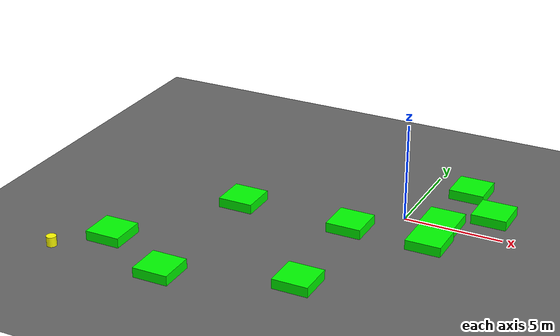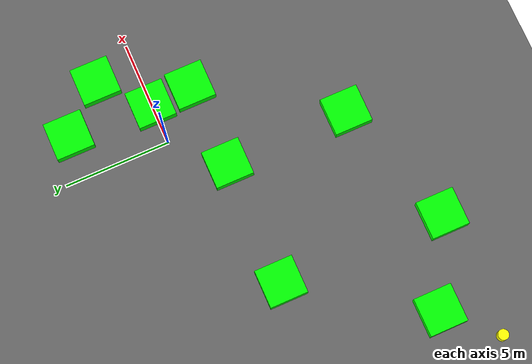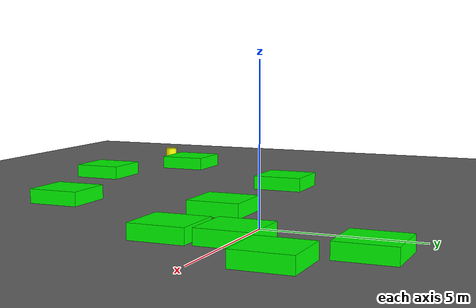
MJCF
<mujoco model="lvl4_standard_obs9_d3long_seed1152">
    <compiler angle="degree" coordinate="local" inertiafromgeom="true"/>
    <option integrator="RK4" timestep="0.01"/>

    <asset>
        <texture builtin="gradient" height="100" rgb1="0.6 0.8 1" rgb2="0 0 0" type="skybox" width="100"/>
        <texture name="floor_texture" type="2d" builtin="checker" width="100" height="100" rgb1="0 0 0" rgb2="0.8 0.8 0.8"/>
        <material name="MatPlane" reflectance="0.5" shininess="1" specular="1" texrepeat="10 10" texture="floor_texture"/>
    </asset>

    <!-- Excluding the contact between the agent and the goal, and the agent and the floor -->
    <contact>
        <exclude body1="agent" body2="goal"/>
        <exclude body1 = "agent" body2 = "floor"/>
    </contact>

    <extension>
        <plugin plugin = "mujoco.pid">
            <instance name = "pid1">
                <config key="kp" value="2"/>
                <config key="ki" value="0"/>
                <config key="kd" value="55"/>
            </instance>
        </plugin>
    </extension>

    <worldbody>
        <light cutoff="100" diffuse="1 1 1" dir="-0 0 -1.3" directional="true" exponent="1" pos="0 0 1.3" specular=".1 .1 .1"/>
        <body name="floor" pos="0 0 0">
            <geom name="floor_geom" type="plane" size="20 20 0.1" material="MatPlane"/>
        </body>

                <body name="goal" pos="0.0000 0.0000 0">
            <geom name="goal_geom" type="plane" size="0.5 0.5 1" pos="0 0 0" rgba="1 0 0 1"/>
        </body>

                <body name="agent" pos="-14.0000 -10.0000 0.250">
            <joint name="j1" type="slide" axis ="1 0 0 "/>
            <joint name="j2" type="slide" axis ="0 1 0 "/>
            <geom name="agent_geom" type="cylinder" size="0.25 0.25 0.250" rgba="1 1 0 1"/>
        </body>

        <body name="obstacle1" pos="2.0515 3.9831 0.250">  <geom name="obstacle1_geom" type="box" size="0.9000 0.9000 0.250" rgba="0 1 0 1"/></body>
        <body name="obstacle2" pos="3.9363 1.9206 0.250">  <geom name="obstacle2_geom" type="box" size="0.9000 0.9000 0.250" rgba="0 1 0 1"/></body>
        <body name="obstacle3" pos="1.9109 0.0412 0.250">  <geom name="obstacle3_geom" type="box" size="0.9000 0.9000 0.250" rgba="0 1 0 1"/></body>
        <body name="obstacle4" pos="-7.9359 -2.0771 0.250">  <geom name="obstacle4_geom" type="box" size="0.9000 0.9000 0.250" rgba="0 1 0 1"/></body>
        <body name="obstacle5" pos="-2.0389 -2.0556 0.250">  <geom name="obstacle5_geom" type="box" size="0.9000 0.9000 0.250" rgba="0 1 0 1"/></body>
        <body name="obstacle6" pos="2.0149 -1.9484 0.250">  <geom name="obstacle6_geom" type="box" size="0.9000 0.9000 0.250" rgba="0 1 0 1"/></body>
        <body name="obstacle7" pos="-11.9141 -7.9643 0.250">  <geom name="obstacle7_geom" type="box" size="0.9000 0.9000 0.250" rgba="0 1 0 1"/></body>
        <body name="obstacle8" pos="-1.9488 -7.9592 0.250">  <geom name="obstacle8_geom" type="box" size="0.9000 0.9000 0.250" rgba="0 1 0 1"/></body>
        <body name="obstacle9" pos="-8.0326 -9.9063 0.250">  <geom name="obstacle9_geom" type="box" size="0.9000 0.9000 0.250" rgba="0 1 0 1"/></body>

    </worldbody>

    <sensor>
<!-- SENSORS -->

        <distance name="dist1" geom1="agent_geom" geom2="obstacle1_geom" cutoff="1.5"/>
        <distance name="dist2" geom1="agent_geom" geom2="obstacle2_geom" cutoff="1.5"/>
        <distance name="dist3" geom1="agent_geom" geom2="obstacle3_geom" cutoff="1.5"/>
        <distance name="dist4" geom1="agent_geom" geom2="obstacle4_geom" cutoff="1.5"/>
        <distance name="dist5" geom1="agent_geom" geom2="obstacle5_geom" cutoff="1.5"/>
        <distance name="dist6" geom1="agent_geom" geom2="obstacle6_geom" cutoff="1.5"/>
        <distance name="dist7" geom1="agent_geom" geom2="obstacle7_geom" cutoff="1.5"/>
        <distance name="dist8" geom1="agent_geom" geom2="obstacle8_geom" cutoff="1.5"/>
        <distance name="dist9" geom1="agent_geom" geom2="obstacle9_geom" cutoff="1.5"/>
</sensor>

    <actuator>
        <plugin joint="j1" plugin="mujoco.pid" instance="pid1" />
        <plugin joint="j2" plugin="mujoco.pid" instance="pid1"/>
    </actuator>
</mujoco>
